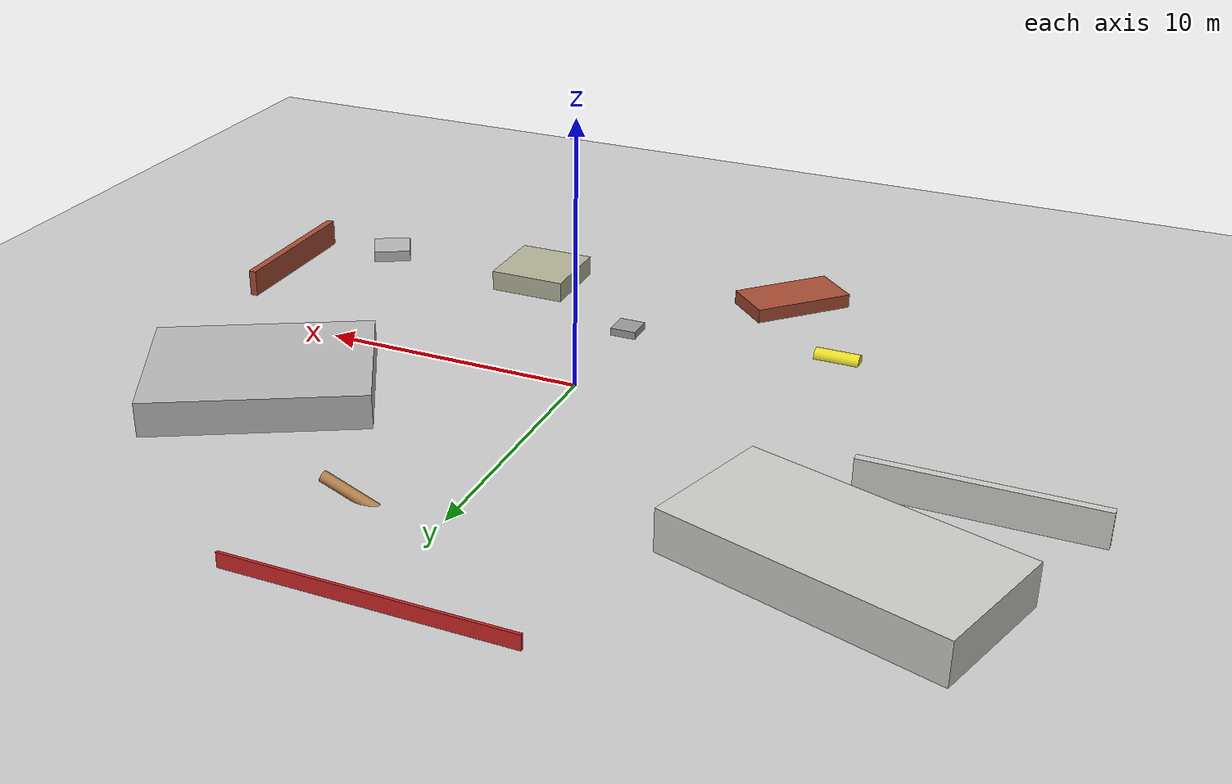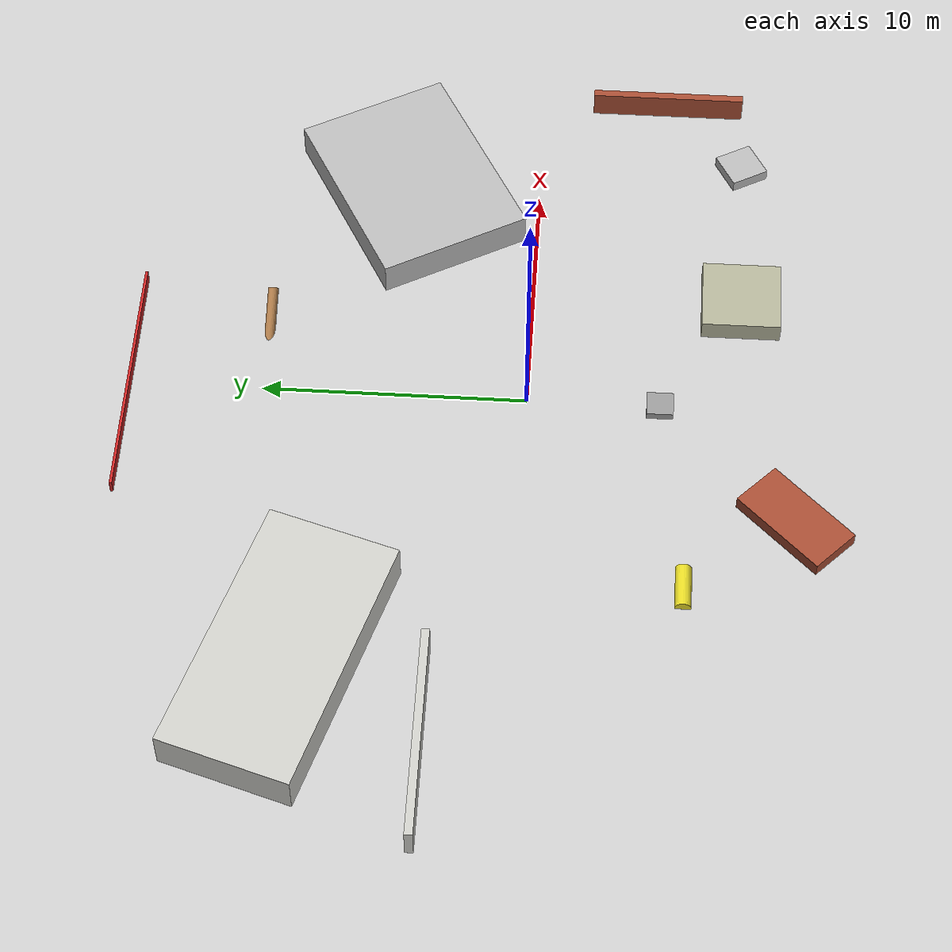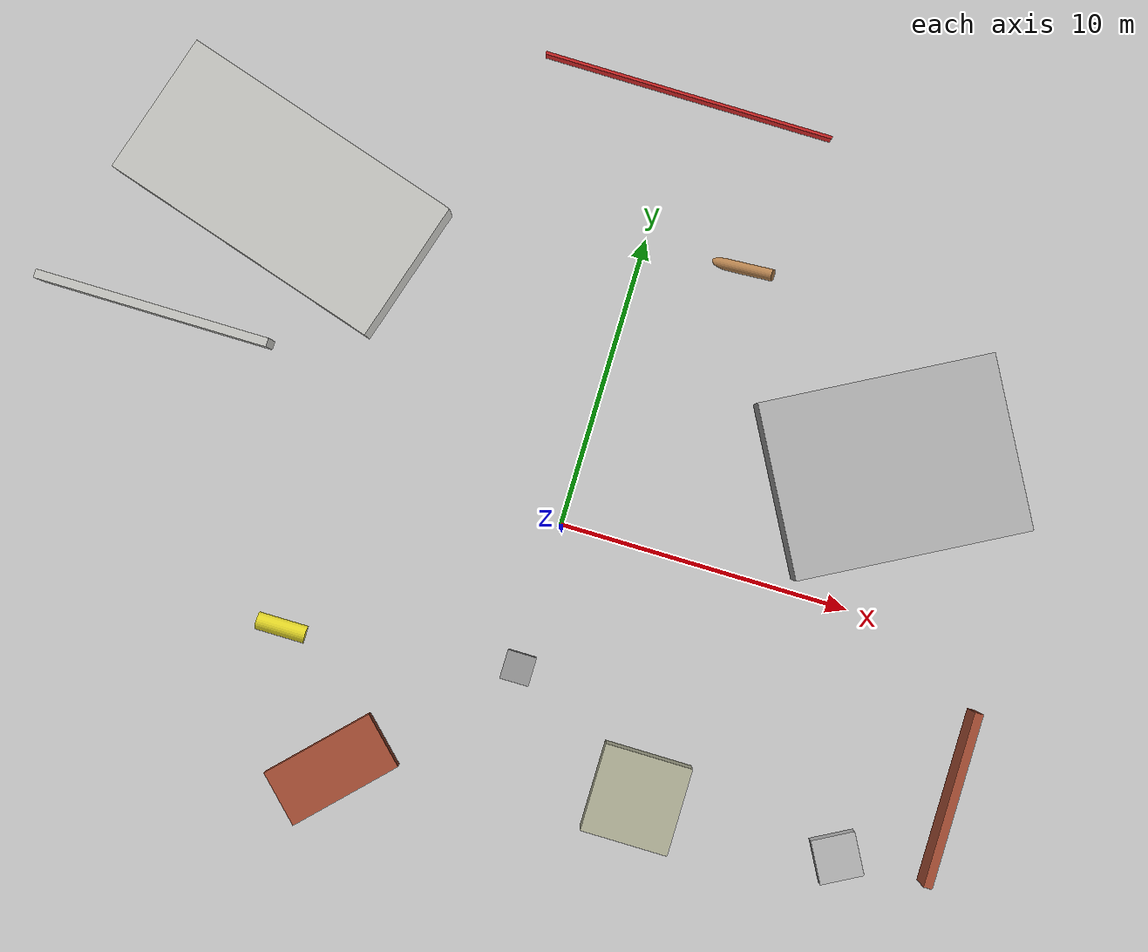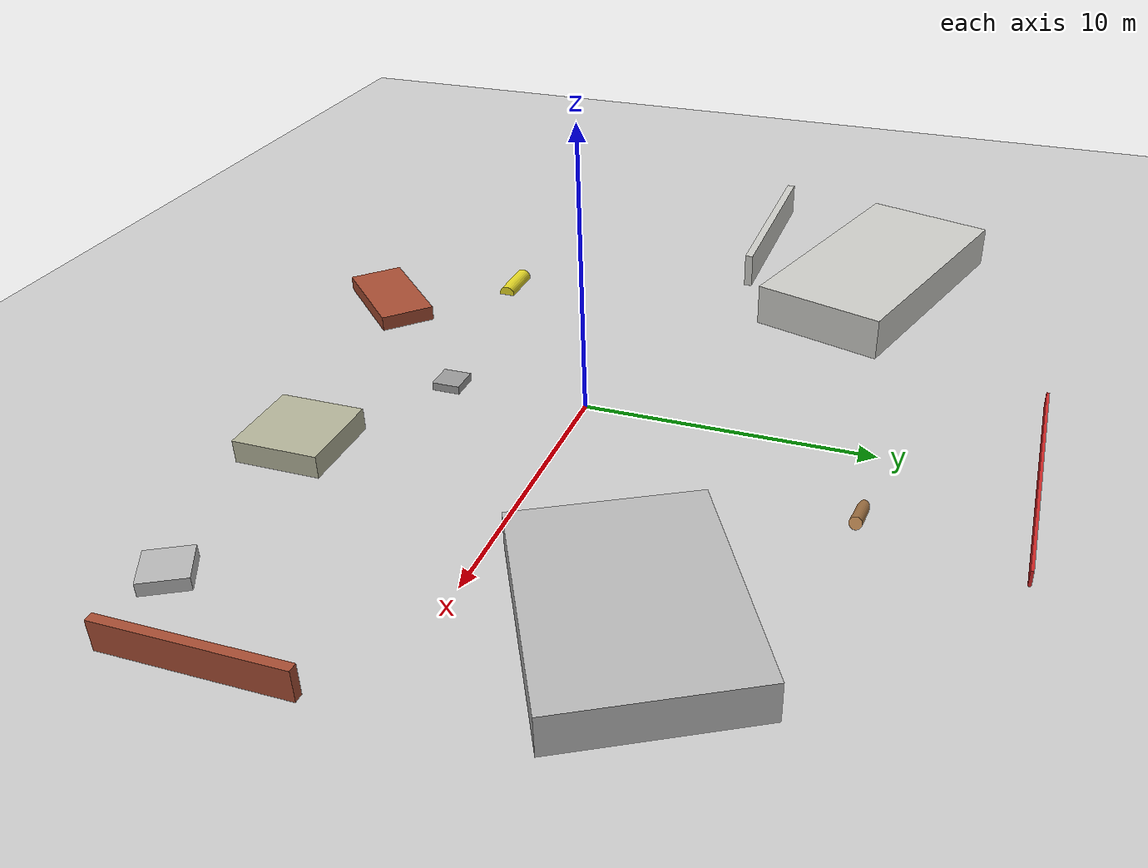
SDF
<?xml version="1.0" ?>
<sdf version="1.6">
  <world name="disaster_site">

    <!-- Physics settings -->
    <physics type="ode">
      <max_step_size>0.001</max_step_size>
      <real_time_factor>1</real_time_factor>
      <real_time_update_rate>1000</real_time_update_rate>
      <gravity>0 0 -9.8</gravity>
    </physics>

    <!-- Lighting -->
    <light name='sun' type='directional'>
      <cast_shadows>1</cast_shadows>
      <pose>0 0 10 0 0 0</pose>
      <diffuse>0.8 0.8 0.8 1</diffuse>
      <specular>0.2 0.2 0.2 1</specular>
      <attenuation>
        <range>1000</range>
        <constant>0.9</constant>
        <linear>0.01</linear>
        <quadratic>0.001</quadratic>
      </attenuation>
      <direction>-0.5 0.1 -0.9</direction>
    </light>

    <!-- Ground Plane -->
    <model name="ground_plane">
      <static>true</static>
      <link name="link">
        <collision name="collision">
          <geometry>
            <plane>
              <normal>0 0 1</normal>
              <size>100 100</size>
            </plane>
          </geometry>
          <surface>
            <friction>
              <ode>
                <mu>100</mu>
                <mu2>50</mu2>
              </ode>
            </friction>
          </surface>
        </collision>
        <visual name="visual">
          <cast_shadows>false</cast_shadows>
          <geometry>
            <plane>
              <normal>0 0 1</normal>
              <size>100 100</size>
            </plane>
          </geometry>
          <material>
            <script>
              <uri>file://media/materials/scripts/gazebo.material</uri>
              <name>Gazebo/Grey</name>
            </script>
          </material>
        </visual>
      </link>
    </model>

    <!-- Collapsed Building 1 -->
    <model name="collapsed_building_1">
      <static>true</static>
      <pose>10 5 0 0 0 0.5</pose>
      <link name="link">
        <collision name="collision">
          <geometry>
            <box>
              <size>8 6 2.5</size>
            </box>
          </geometry>
        </collision>
        <visual name="visual">
          <geometry>
            <box>
              <size>8 6 2.5</size>
            </box>
          </geometry>
          <material>
            <script>
              <uri>file://media/materials/scripts/gazebo.material</uri>
              <name>Gazebo/DirtyBrick</name>
            </script>
          </material>
        </visual>
      </link>
    </model>

    <!-- Collapsed Building 2 -->
    <model name="collapsed_building_2">
      <static>true</static>
      <pose>-12 8 0 0 0 -0.3</pose>
      <link name="link">
        <collision name="collision">
          <geometry>
            <box>
              <size>10 5 3</size>
            </box>
          </geometry>
        </collision>
        <visual name="visual">
          <geometry>
            <box>
              <size>10 5 3</size>
            </box>
          </geometry>
          <material>
            <script>
              <uri>file://media/materials/scripts/gazebo.material</uri>
              <name>Gazebo/CeilingTiled</name>
            </script>
          </material>
        </visual>
      </link>
    </model>

    <!-- Rubble Pile 1 -->
    <model name="rubble_1">
      <static>true</static>
      <pose>5 -8 0 0 0 0</pose>
      <link name="link">
        <collision name="collision">
          <geometry>
            <box>
              <size>3 3 1.5</size>
            </box>
          </geometry>
        </collision>
        <visual name="visual">
          <geometry>
            <box>
              <size>3 3 1.5</size>
            </box>
          </geometry>
          <material>
            <script>
              <uri>file://media/materials/scripts/gazebo.material</uri>
              <name>Gazebo/Residential</name>
            </script>
          </material>
        </visual>
      </link>
    </model>

    <!-- Rubble Pile 2 -->
    <model name="rubble_2">
      <static>true</static>
      <pose>-5 -10 0 0 0 0.8</pose>
      <link name="link">
        <collision name="collision">
          <geometry>
            <box>
              <size>4 2 1</size>
            </box>
          </geometry>
        </collision>
        <visual name="visual">
          <geometry>
            <box>
              <size>4 2 1</size>
            </box>
          </geometry>
          <material>
            <script>
              <uri>file://media/materials/scripts/gazebo.material</uri>
              <name>Gazebo/Bricks</name>
            </script>
          </material>
        </visual>
      </link>
    </model>

    <!-- Damaged Wall 1 -->
    <model name="wall_1">
      <static>true</static>
      <pose>15 -5 0 0 0 1.57</pose>
      <link name="link">
        <collision name="collision">
          <geometry>
            <box>
              <size>6 0.3 2</size>
            </box>
          </geometry>
        </collision>
        <visual name="visual">
          <geometry>
            <box>
              <size>6 0.3 2</size>
            </box>
          </geometry>
          <material>
            <script>
              <uri>file://media/materials/scripts/gazebo.material</uri>
              <name>Gazebo/Bricks</name>
            </script>
          </material>
        </visual>
      </link>
    </model>

    <!-- Damaged Wall 2 -->
    <model name="wall_2">
      <static>true</static>
      <pose>-15 3 0 0 0 0</pose>
      <link name="link">
        <collision name="collision">
          <geometry>
            <box>
              <size>8 0.3 2.5</size>
            </box>
          </geometry>
        </collision>
        <visual name="visual">
          <geometry>
            <box>
              <size>8 0.3 2.5</size>
            </box>
          </geometry>
          <material>
            <script>
              <uri>file://media/materials/scripts/gazebo.material</uri>
              <name>Gazebo/CeilingTiled</name>
            </script>
          </material>
        </visual>
      </link>
    </model>

    <!-- Victim Mannequin 1 (Simulated Person) -->
    <model name="victim_1">
      <static>true</static>
      <pose>7 3 0 0 0 0</pose>
      <link name="link">
        <collision name="collision">
          <geometry>
            <cylinder>
              <radius>0.3</radius>
              <length>1.7</length>
            </cylinder>
          </geometry>
        </collision>
        <visual name="visual">
          <geometry>
            <cylinder>
              <radius>0.3</radius>
              <length>1.7</length>
            </cylinder>
          </geometry>
          <material>
            <script>
              <uri>file://media/materials/scripts/gazebo.material</uri>
              <name>Gazebo/Orange</name>
            </script>
          </material>
        </visual>
      </link>
    </model>

    <!-- Victim Mannequin 2 -->
    <model name="victim_2">
      <static>true</static>
      <pose>-8 -6 0 0 1.57 0</pose>
      <link name="link">
        <collision name="collision">
          <geometry>
            <cylinder>
              <radius>0.3</radius>
              <length>1.7</length>
            </cylinder>
          </geometry>
        </collision>
        <visual name="visual">
          <geometry>
            <cylinder>
              <radius>0.3</radius>
              <length>1.7</length>
            </cylinder>
          </geometry>
          <material>
            <script>
              <uri>file://media/materials/scripts/gazebo.material</uri>
              <name>Gazebo/Yellow</name>
            </script>
          </material>
        </visual>
      </link>
    </model>

    <!-- Debris Cylinders -->
    <model name="debris_1">
      <static>true</static>
      <pose>3 10 0 0 1.2 0</pose>
      <link name="link">
        <collision name="collision">
          <geometry>
            <cylinder>
              <radius>0.2</radius>
              <length>3</length>
            </cylinder>
          </geometry>
        </collision>
        <visual name="visual">
          <geometry>
            <cylinder>
              <radius>0.2</radius>
              <length>3</length>
            </cylinder>
          </geometry>
          <material>
            <script>
              <uri>file://media/materials/scripts/gazebo.material</uri>
              <name>Gazebo/Wood</name>
            </script>
          </material>
        </visual>
      </link>
    </model>

    <!-- Barrier/Fence Sections -->
    <model name="barrier_1">
      <static>true</static>
      <pose>0 15 0 0 0 0</pose>
      <link name="link">
        <collision name="collision">
          <geometry>
            <box>
              <size>10 0.1 1</size>
            </box>
          </geometry>
        </collision>
        <visual name="visual">
          <geometry>
            <box>
              <size>10 0.1 1</size>
            </box>
          </geometry>
          <material>
            <script>
              <uri>file://media/materials/scripts/gazebo.material</uri>
              <name>Gazebo/Red</name>
            </script>
          </material>
        </visual>
      </link>
    </model>

    <!-- Additional Small Obstacles -->
    <model name="obstacle_1">
      <static>true</static>
      <pose>0 -5 0 0 0 0</pose>
      <link name="link">
        <collision name="collision">
          <geometry>
            <box>
              <size>1 1 0.5</size>
            </box>
          </geometry>
        </collision>
        <visual name="visual">
          <geometry>
            <box>
              <size>1 1 0.5</size>
            </box>
          </geometry>
          <material>
            <script>
              <uri>file://media/materials/scripts/gazebo.material</uri>
              <name>Gazebo/Grey</name>
            </script>
          </material>
        </visual>
      </link>
    </model>

    <model name="obstacle_2">
      <static>true</static>
      <pose>12 -8 0 0 0 0.5</pose>
      <link name="link">
        <collision name="collision">
          <geometry>
            <box>
              <size>1.5 1.5 0.8</size>
            </box>
          </geometry>
        </collision>
        <visual name="visual">
          <geometry>
            <box>
              <size>1.5 1.5 0.8</size>
            </box>
          </geometry>
          <material>
            <script>
              <uri>file://media/materials/scripts/gazebo.material</uri>
              <name>Gazebo/DirtyBrick</name>
            </script>
          </material>
        </visual>
      </link>
    </model>

    <!-- Scene settings -->
    <scene>
      <ambient>0.4 0.4 0.4 1</ambient>
      <background>0.7 0.7 0.7 1</background>
      <shadows>1</shadows>
    </scene>

    <!-- GUI settings -->
    <gui fullscreen='0'>
      <camera name='user_camera'>
        <pose>-20 -20 15 0 0.5 0.785</pose>
        <view_controller>orbit</view_controller>
      </camera>
    </gui>

  </world>
</sdf>
